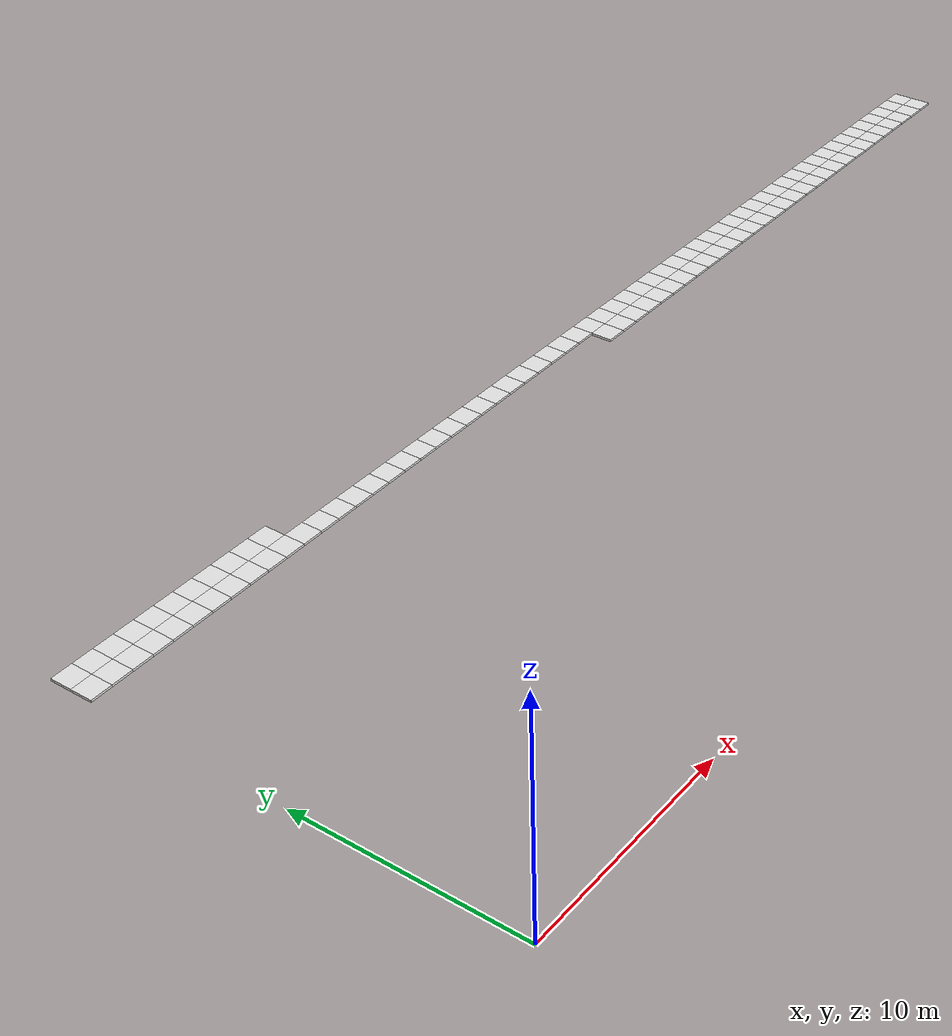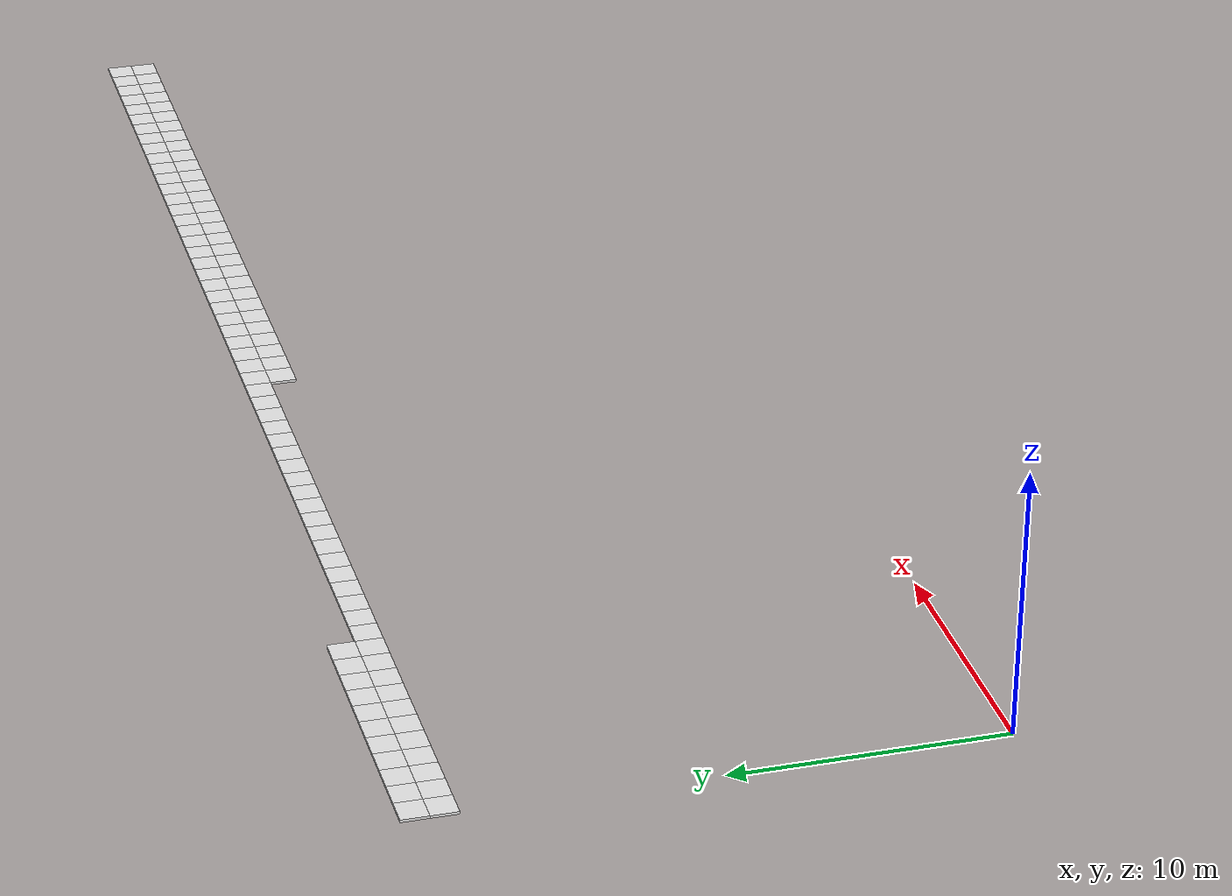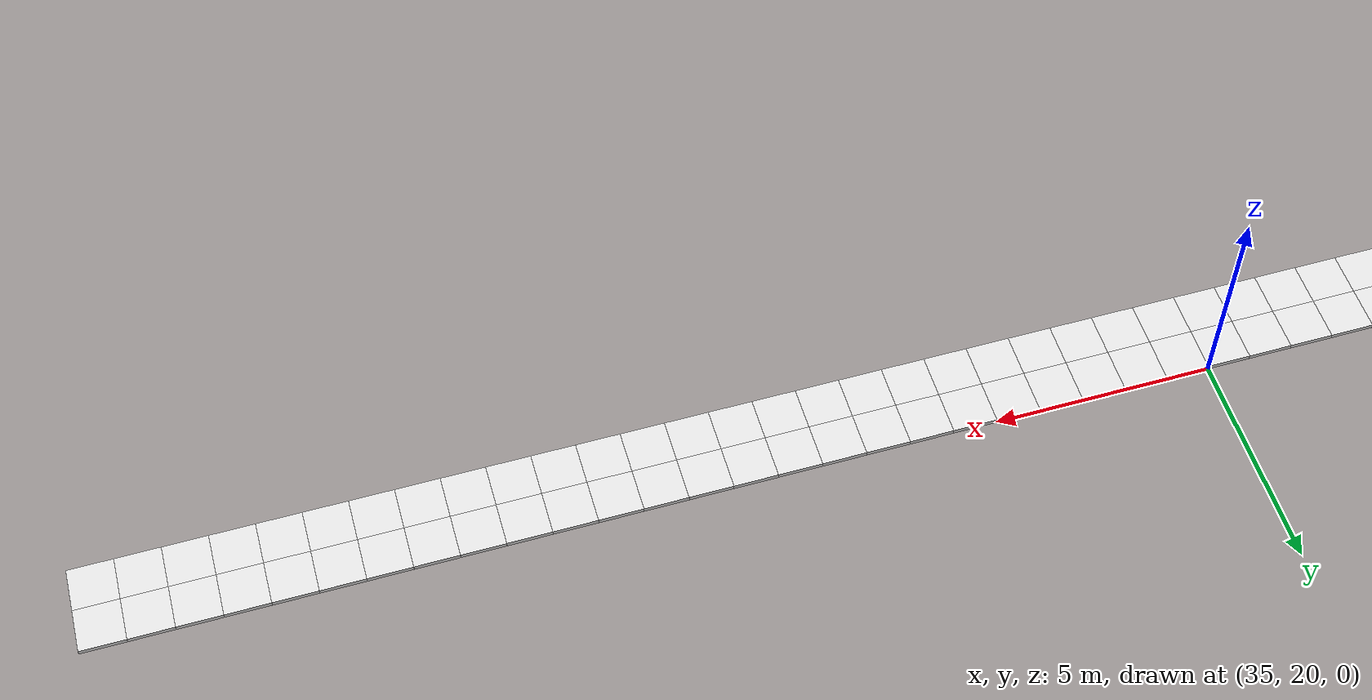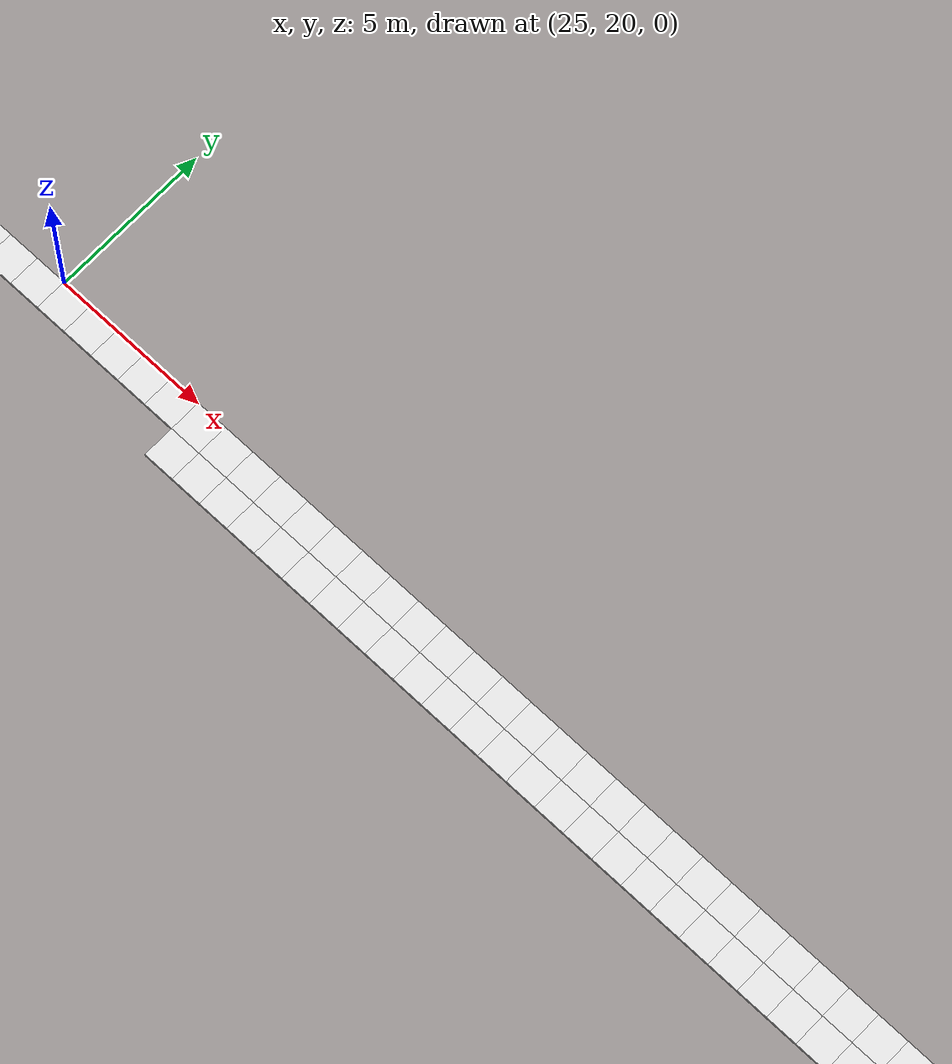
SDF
<sdf version="1.6">
 <world name="grid_world">
  <model name="cell_30_18">
   <static>true</static>
   <link name="link">
    <collision name="collision"><geometry><box><size>1 1 0.1</size></box></geometry></collision>
    <visual name="visual">
     <geometry><box><size>1 1 0.1</size></box></geometry>
     <material>
      <script><uri>file://media/materials/scripts/gazebo.material</uri><name>Gazebo/White</name></script>
     </material>
    </visual>
    <pose>30.5 18.5 0.05 0 0 0</pose>
   </link>
  </model>
  <model name="cell_31_18">
   <static>true</static>
   <link name="link">
    <collision name="collision"><geometry><box><size>1 1 0.1</size></box></geometry></collision>
    <visual name="visual">
     <geometry><box><size>1 1 0.1</size></box></geometry>
     <material>
      <script><uri>file://media/materials/scripts/gazebo.material</uri><name>Gazebo/White</name></script>
     </material>
    </visual>
    <pose>31.5 18.5 0.05 0 0 0</pose>
   </link>
  </model>
  <model name="cell_32_18">
   <static>true</static>
   <link name="link">
    <collision name="collision"><geometry><box><size>1 1 0.1</size></box></geometry></collision>
    <visual name="visual">
     <geometry><box><size>1 1 0.1</size></box></geometry>
     <material>
      <script><uri>file://media/materials/scripts/gazebo.material</uri><name>Gazebo/White</name></script>
     </material>
    </visual>
    <pose>32.5 18.5 0.05 0 0 0</pose>
   </link>
  </model>
  <model name="cell_33_18">
   <static>true</static>
   <link name="link">
    <collision name="collision"><geometry><box><size>1 1 0.1</size></box></geometry></collision>
    <visual name="visual">
     <geometry><box><size>1 1 0.1</size></box></geometry>
     <material>
      <script><uri>file://media/materials/scripts/gazebo.material</uri><name>Gazebo/White</name></script>
     </material>
    </visual>
    <pose>33.5 18.5 0.05 0 0 0</pose>
   </link>
  </model>
  <model name="cell_34_18">
   <static>true</static>
   <link name="link">
    <collision name="collision"><geometry><box><size>1 1 0.1</size></box></geometry></collision>
    <visual name="visual">
     <geometry><box><size>1 1 0.1</size></box></geometry>
     <material>
      <script><uri>file://media/materials/scripts/gazebo.material</uri><name>Gazebo/White</name></script>
     </material>
    </visual>
    <pose>34.5 18.5 0.05 0 0 0</pose>
   </link>
  </model>
  <model name="cell_35_18">
   <static>true</static>
   <link name="link">
    <collision name="collision"><geometry><box><size>1 1 0.1</size></box></geometry></collision>
    <visual name="visual">
     <geometry><box><size>1 1 0.1</size></box></geometry>
     <material>
      <script><uri>file://media/materials/scripts/gazebo.material</uri><name>Gazebo/White</name></script>
     </material>
    </visual>
    <pose>35.5 18.5 0.05 0 0 0</pose>
   </link>
  </model>
  <model name="cell_36_18">
   <static>true</static>
   <link name="link">
    <collision name="collision"><geometry><box><size>1 1 0.1</size></box></geometry></collision>
    <visual name="visual">
     <geometry><box><size>1 1 0.1</size></box></geometry>
     <material>
      <script><uri>file://media/materials/scripts/gazebo.material</uri><name>Gazebo/White</name></script>
     </material>
    </visual>
    <pose>36.5 18.5 0.05 0 0 0</pose>
   </link>
  </model>
  <model name="cell_37_18">
   <static>true</static>
   <link name="link">
    <collision name="collision"><geometry><box><size>1 1 0.1</size></box></geometry></collision>
    <visual name="visual">
     <geometry><box><size>1 1 0.1</size></box></geometry>
     <material>
      <script><uri>file://media/materials/scripts/gazebo.material</uri><name>Gazebo/White</name></script>
     </material>
    </visual>
    <pose>37.5 18.5 0.05 0 0 0</pose>
   </link>
  </model>
  <model name="cell_38_18">
   <static>true</static>
   <link name="link">
    <collision name="collision"><geometry><box><size>1 1 0.1</size></box></geometry></collision>
    <visual name="visual">
     <geometry><box><size>1 1 0.1</size></box></geometry>
     <material>
      <script><uri>file://media/materials/scripts/gazebo.material</uri><name>Gazebo/White</name></script>
     </material>
    </visual>
    <pose>38.5 18.5 0.05 0 0 0</pose>
   </link>
  </model>
  <model name="cell_39_18">
   <static>true</static>
   <link name="link">
    <collision name="collision"><geometry><box><size>1 1 0.1</size></box></geometry></collision>
    <visual name="visual">
     <geometry><box><size>1 1 0.1</size></box></geometry>
     <material>
      <script><uri>file://media/materials/scripts/gazebo.material</uri><name>Gazebo/White</name></script>
     </material>
    </visual>
    <pose>39.5 18.5 0.05 0 0 0</pose>
   </link>
  </model>
  <model name="cell_40_18">
   <static>true</static>
   <link name="link">
    <collision name="collision"><geometry><box><size>1 1 0.1</size></box></geometry></collision>
    <visual name="visual">
     <geometry><box><size>1 1 0.1</size></box></geometry>
     <material>
      <script><uri>file://media/materials/scripts/gazebo.material</uri><name>Gazebo/White</name></script>
     </material>
    </visual>
    <pose>40.5 18.5 0.05 0 0 0</pose>
   </link>
  </model>
  <model name="cell_41_18">
   <static>true</static>
   <link name="link">
    <collision name="collision"><geometry><box><size>1 1 0.1</size></box></geometry></collision>
    <visual name="visual">
     <geometry><box><size>1 1 0.1</size></box></geometry>
     <material>
      <script><uri>file://media/materials/scripts/gazebo.material</uri><name>Gazebo/White</name></script>
     </material>
    </visual>
    <pose>41.5 18.5 0.05 0 0 0</pose>
   </link>
  </model>
  <model name="cell_42_18">
   <static>true</static>
   <link name="link">
    <collision name="collision"><geometry><box><size>1 1 0.1</size></box></geometry></collision>
    <visual name="visual">
     <geometry><box><size>1 1 0.1</size></box></geometry>
     <material>
      <script><uri>file://media/materials/scripts/gazebo.material</uri><name>Gazebo/White</name></script>
     </material>
    </visual>
    <pose>42.5 18.5 0.05 0 0 0</pose>
   </link>
  </model>
  <model name="cell_43_18">
   <static>true</static>
   <link name="link">
    <collision name="collision"><geometry><box><size>1 1 0.1</size></box></geometry></collision>
    <visual name="visual">
     <geometry><box><size>1 1 0.1</size></box></geometry>
     <material>
      <script><uri>file://media/materials/scripts/gazebo.material</uri><name>Gazebo/White</name></script>
     </material>
    </visual>
    <pose>43.5 18.5 0.05 0 0 0</pose>
   </link>
  </model>
  <model name="cell_44_18">
   <static>true</static>
   <link name="link">
    <collision name="collision"><geometry><box><size>1 1 0.1</size></box></geometry></collision>
    <visual name="visual">
     <geometry><box><size>1 1 0.1</size></box></geometry>
     <material>
      <script><uri>file://media/materials/scripts/gazebo.material</uri><name>Gazebo/White</name></script>
     </material>
    </visual>
    <pose>44.5 18.5 0.05 0 0 0</pose>
   </link>
  </model>
  <model name="cell_45_18">
   <static>true</static>
   <link name="link">
    <collision name="collision"><geometry><box><size>1 1 0.1</size></box></geometry></collision>
    <visual name="visual">
     <geometry><box><size>1 1 0.1</size></box></geometry>
     <material>
      <script><uri>file://media/materials/scripts/gazebo.material</uri><name>Gazebo/White</name></script>
     </material>
    </visual>
    <pose>45.5 18.5 0.05 0 0 0</pose>
   </link>
  </model>
  <model name="cell_46_18">
   <static>true</static>
   <link name="link">
    <collision name="collision"><geometry><box><size>1 1 0.1</size></box></geometry></collision>
    <visual name="visual">
     <geometry><box><size>1 1 0.1</size></box></geometry>
     <material>
      <script><uri>file://media/materials/scripts/gazebo.material</uri><name>Gazebo/White</name></script>
     </material>
    </visual>
    <pose>46.5 18.5 0.05 0 0 0</pose>
   </link>
  </model>
  <model name="cell_47_18">
   <static>true</static>
   <link name="link">
    <collision name="collision"><geometry><box><size>1 1 0.1</size></box></geometry></collision>
    <visual name="visual">
     <geometry><box><size>1 1 0.1</size></box></geometry>
     <material>
      <script><uri>file://media/materials/scripts/gazebo.material</uri><name>Gazebo/White</name></script>
     </material>
    </visual>
    <pose>47.5 18.5 0.05 0 0 0</pose>
   </link>
  </model>
  <model name="cell_48_18">
   <static>true</static>
   <link name="link">
    <collision name="collision"><geometry><box><size>1 1 0.1</size></box></geometry></collision>
    <visual name="visual">
     <geometry><box><size>1 1 0.1</size></box></geometry>
     <material>
      <script><uri>file://media/materials/scripts/gazebo.material</uri><name>Gazebo/White</name></script>
     </material>
    </visual>
    <pose>48.5 18.5 0.05 0 0 0</pose>
   </link>
  </model>
  <model name="cell_49_18">
   <static>true</static>
   <link name="link">
    <collision name="collision"><geometry><box><size>1 1 0.1</size></box></geometry></collision>
    <visual name="visual">
     <geometry><box><size>1 1 0.1</size></box></geometry>
     <material>
      <script><uri>file://media/materials/scripts/gazebo.material</uri><name>Gazebo/White</name></script>
     </material>
    </visual>
    <pose>49.5 18.5 0.05 0 0 0</pose>
   </link>
  </model>
  <model name="cell_50_18">
   <static>true</static>
   <link name="link">
    <collision name="collision"><geometry><box><size>1 1 0.1</size></box></geometry></collision>
    <visual name="visual">
     <geometry><box><size>1 1 0.1</size></box></geometry>
     <material>
      <script><uri>file://media/materials/scripts/gazebo.material</uri><name>Gazebo/White</name></script>
     </material>
    </visual>
    <pose>50.5 18.5 0.05 0 0 0</pose>
   </link>
  </model>
  <model name="cell_51_18">
   <static>true</static>
   <link name="link">
    <collision name="collision"><geometry><box><size>1 1 0.1</size></box></geometry></collision>
    <visual name="visual">
     <geometry><box><size>1 1 0.1</size></box></geometry>
     <material>
      <script><uri>file://media/materials/scripts/gazebo.material</uri><name>Gazebo/White</name></script>
     </material>
    </visual>
    <pose>51.5 18.5 0.05 0 0 0</pose>
   </link>
  </model>
  <model name="cell_52_18">
   <static>true</static>
   <link name="link">
    <collision name="collision"><geometry><box><size>1 1 0.1</size></box></geometry></collision>
    <visual name="visual">
     <geometry><box><size>1 1 0.1</size></box></geometry>
     <material>
      <script><uri>file://media/materials/scripts/gazebo.material</uri><name>Gazebo/White</name></script>
     </material>
    </visual>
    <pose>52.5 18.5 0.05 0 0 0</pose>
   </link>
  </model>
  <model name="cell_53_18">
   <static>true</static>
   <link name="link">
    <collision name="collision"><geometry><box><size>1 1 0.1</size></box></geometry></collision>
    <visual name="visual">
     <geometry><box><size>1 1 0.1</size></box></geometry>
     <material>
      <script><uri>file://media/materials/scripts/gazebo.material</uri><name>Gazebo/White</name></script>
     </material>
    </visual>
    <pose>53.5 18.5 0.05 0 0 0</pose>
   </link>
  </model>
  <model name="cell_54_18">
   <static>true</static>
   <link name="link">
    <collision name="collision"><geometry><box><size>1 1 0.1</size></box></geometry></collision>
    <visual name="visual">
     <geometry><box><size>1 1 0.1</size></box></geometry>
     <material>
      <script><uri>file://media/materials/scripts/gazebo.material</uri><name>Gazebo/White</name></script>
     </material>
    </visual>
    <pose>54.5 18.5 0.05 0 0 0</pose>
   </link>
  </model>
  <model name="cell_55_18">
   <static>true</static>
   <link name="link">
    <collision name="collision"><geometry><box><size>1 1 0.1</size></box></geometry></collision>
    <visual name="visual">
     <geometry><box><size>1 1 0.1</size></box></geometry>
     <material>
      <script><uri>file://media/materials/scripts/gazebo.material</uri><name>Gazebo/White</name></script>
     </material>
    </visual>
    <pose>55.5 18.5 0.05 0 0 0</pose>
   </link>
  </model>
  <model name="cell_56_18">
   <static>true</static>
   <link name="link">
    <collision name="collision"><geometry><box><size>1 1 0.1</size></box></geometry></collision>
    <visual name="visual">
     <geometry><box><size>1 1 0.1</size></box></geometry>
     <material>
      <script><uri>file://media/materials/scripts/gazebo.material</uri><name>Gazebo/White</name></script>
     </material>
    </visual>
    <pose>56.5 18.5 0.05 0 0 0</pose>
   </link>
  </model>
  <model name="cell_57_18">
   <static>true</static>
   <link name="link">
    <collision name="collision"><geometry><box><size>1 1 0.1</size></box></geometry></collision>
    <visual name="visual">
     <geometry><box><size>1 1 0.1</size></box></geometry>
     <material>
      <script><uri>file://media/materials/scripts/gazebo.material</uri><name>Gazebo/White</name></script>
     </material>
    </visual>
    <pose>57.5 18.5 0.05 0 0 0</pose>
   </link>
  </model>
  <model name="cell_58_18">
   <static>true</static>
   <link name="link">
    <collision name="collision"><geometry><box><size>1 1 0.1</size></box></geometry></collision>
    <visual name="visual">
     <geometry><box><size>1 1 0.1</size></box></geometry>
     <material>
      <script><uri>file://media/materials/scripts/gazebo.material</uri><name>Gazebo/White</name></script>
     </material>
    </visual>
    <pose>58.5 18.5 0.05 0 0 0</pose>
   </link>
  </model>
  <model name="cell_59_18">
   <static>true</static>
   <link name="link">
    <collision name="collision"><geometry><box><size>1 1 0.1</size></box></geometry></collision>
    <visual name="visual">
     <geometry><box><size>1 1 0.1</size></box></geometry>
     <material>
      <script><uri>file://media/materials/scripts/gazebo.material</uri><name>Gazebo/White</name></script>
     </material>
    </visual>
    <pose>59.5 18.5 0.05 0 0 0</pose>
   </link>
  </model>
  <model name="cell_0_19">
   <static>true</static>
   <link name="link">
    <collision name="collision"><geometry><box><size>1 1 0.1</size></box></geometry></collision>
    <visual name="visual">
     <geometry><box><size>1 1 0.1</size></box></geometry>
     <material>
      <script><uri>file://media/materials/scripts/gazebo.material</uri><name>Gazebo/White</name></script>
     </material>
    </visual>
    <pose>0.5 19.5 0.05 0 0 0</pose>
   </link>
  </model>
  <model name="cell_1_19">
   <static>true</static>
   <link name="link">
    <collision name="collision"><geometry><box><size>1 1 0.1</size></box></geometry></collision>
    <visual name="visual">
     <geometry><box><size>1 1 0.1</size></box></geometry>
     <material>
      <script><uri>file://media/materials/scripts/gazebo.material</uri><name>Gazebo/White</name></script>
     </material>
    </visual>
    <pose>1.5 19.5 0.05 0 0 0</pose>
   </link>
  </model>
  <model name="cell_2_19">
   <static>true</static>
   <link name="link">
    <collision name="collision"><geometry><box><size>1 1 0.1</size></box></geometry></collision>
    <visual name="visual">
     <geometry><box><size>1 1 0.1</size></box></geometry>
     <material>
      <script><uri>file://media/materials/scripts/gazebo.material</uri><name>Gazebo/White</name></script>
     </material>
    </visual>
    <pose>2.5 19.5 0.05 0 0 0</pose>
   </link>
  </model>
  <model name="cell_3_19">
   <static>true</static>
   <link name="link">
    <collision name="collision"><geometry><box><size>1 1 0.1</size></box></geometry></collision>
    <visual name="visual">
     <geometry><box><size>1 1 0.1</size></box></geometry>
     <material>
      <script><uri>file://media/materials/scripts/gazebo.material</uri><name>Gazebo/White</name></script>
     </material>
    </visual>
    <pose>3.5 19.5 0.05 0 0 0</pose>
   </link>
  </model>
  <model name="cell_4_19">
   <static>true</static>
   <link name="link">
    <collision name="collision"><geometry><box><size>1 1 0.1</size></box></geometry></collision>
    <visual name="visual">
     <geometry><box><size>1 1 0.1</size></box></geometry>
     <material>
      <script><uri>file://media/materials/scripts/gazebo.material</uri><name>Gazebo/White</name></script>
     </material>
    </visual>
    <pose>4.5 19.5 0.05 0 0 0</pose>
   </link>
  </model>
  <model name="cell_5_19">
   <static>true</static>
   <link name="link">
    <collision name="collision"><geometry><box><size>1 1 0.1</size></box></geometry></collision>
    <visual name="visual">
     <geometry><box><size>1 1 0.1</size></box></geometry>
     <material>
      <script><uri>file://media/materials/scripts/gazebo.material</uri><name>Gazebo/White</name></script>
     </material>
    </visual>
    <pose>5.5 19.5 0.05 0 0 0</pose>
   </link>
  </model>
  <model name="cell_6_19">
   <static>true</static>
   <link name="link">
    <collision name="collision"><geometry><box><size>1 1 0.1</size></box></geometry></collision>
    <visual name="visual">
     <geometry><box><size>1 1 0.1</size></box></geometry>
     <material>
      <script><uri>file://media/materials/scripts/gazebo.material</uri><name>Gazebo/White</name></script>
     </material>
    </visual>
    <pose>6.5 19.5 0.05 0 0 0</pose>
   </link>
  </model>
  <model name="cell_7_19">
   <static>true</static>
   <link name="link">
    <collision name="collision"><geometry><box><size>1 1 0.1</size></box></geometry></collision>
    <visual name="visual">
     <geometry><box><size>1 1 0.1</size></box></geometry>
     <material>
      <script><uri>file://media/materials/scripts/gazebo.material</uri><name>Gazebo/White</name></script>
     </material>
    </visual>
    <pose>7.5 19.5 0.05 0 0 0</pose>
   </link>
  </model>
  <model name="cell_8_19">
   <static>true</static>
   <link name="link">
    <collision name="collision"><geometry><box><size>1 1 0.1</size></box></geometry></collision>
    <visual name="visual">
     <geometry><box><size>1 1 0.1</size></box></geometry>
     <material>
      <script><uri>file://media/materials/scripts/gazebo.material</uri><name>Gazebo/White</name></script>
     </material>
    </visual>
    <pose>8.5 19.5 0.05 0 0 0</pose>
   </link>
  </model>
  <model name="cell_9_19">
   <static>true</static>
   <link name="link">
    <collision name="collision"><geometry><box><size>1 1 0.1</size></box></geometry></collision>
    <visual name="visual">
     <geometry><box><size>1 1 0.1</size></box></geometry>
     <material>
      <script><uri>file://media/materials/scripts/gazebo.material</uri><name>Gazebo/White</name></script>
     </material>
    </visual>
    <pose>9.5 19.5 0.05 0 0 0</pose>
   </link>
  </model>
  <model name="cell_10_19">
   <static>true</static>
   <link name="link">
    <collision name="collision"><geometry><box><size>1 1 0.1</size></box></geometry></collision>
    <visual name="visual">
     <geometry><box><size>1 1 0.1</size></box></geometry>
     <material>
      <script><uri>file://media/materials/scripts/gazebo.material</uri><name>Gazebo/White</name></script>
     </material>
    </visual>
    <pose>10.5 19.5 0.05 0 0 0</pose>
   </link>
  </model>
  <model name="cell_11_19">
   <static>true</static>
   <link name="link">
    <collision name="collision"><geometry><box><size>1 1 0.1</size></box></geometry></collision>
    <visual name="visual">
     <geometry><box><size>1 1 0.1</size></box></geometry>
     <material>
      <script><uri>file://media/materials/scripts/gazebo.material</uri><name>Gazebo/White</name></script>
     </material>
    </visual>
    <pose>11.5 19.5 0.05 0 0 0</pose>
   </link>
  </model>
  <model name="cell_12_19">
   <static>true</static>
   <link name="link">
    <collision name="collision"><geometry><box><size>1 1 0.1</size></box></geometry></collision>
    <visual name="visual">
     <geometry><box><size>1 1 0.1</size></box></geometry>
     <material>
      <script><uri>file://media/materials/scripts/gazebo.material</uri><name>Gazebo/White</name></script>
     </material>
    </visual>
    <pose>12.5 19.5 0.05 0 0 0</pose>
   </link>
  </model>
  <model name="cell_13_19">
   <static>true</static>
   <link name="link">
    <collision name="collision"><geometry><box><size>1 1 0.1</size></box></geometry></collision>
    <visual name="visual">
     <geometry><box><size>1 1 0.1</size></box></geometry>
     <material>
      <script><uri>file://media/materials/scripts/gazebo.material</uri><name>Gazebo/White</name></script>
     </material>
    </visual>
    <pose>13.5 19.5 0.05 0 0 0</pose>
   </link>
  </model>
  <model name="cell_14_19">
   <static>true</static>
   <link name="link">
    <collision name="collision"><geometry><box><size>1 1 0.1</size></box></geometry></collision>
    <visual name="visual">
     <geometry><box><size>1 1 0.1</size></box></geometry>
     <material>
      <script><uri>file://media/materials/scripts/gazebo.material</uri><name>Gazebo/White</name></script>
     </material>
    </visual>
    <pose>14.5 19.5 0.05 0 0 0</pose>
   </link>
  </model>
  <model name="cell_15_19">
   <static>true</static>
   <link name="link">
    <collision name="collision"><geometry><box><size>1 1 0.1</size></box></geometry></collision>
    <visual name="visual">
     <geometry><box><size>1 1 0.1</size></box></geometry>
     <material>
      <script><uri>file://media/materials/scripts/gazebo.material</uri><name>Gazebo/White</name></script>
     </material>
    </visual>
    <pose>15.5 19.5 0.05 0 0 0</pose>
   </link>
  </model>
  <model name="cell_16_19">
   <static>true</static>
   <link name="link">
    <collision name="collision"><geometry><box><size>1 1 0.1</size></box></geometry></collision>
    <visual name="visual">
     <geometry><box><size>1 1 0.1</size></box></geometry>
     <material>
      <script><uri>file://media/materials/scripts/gazebo.material</uri><name>Gazebo/White</name></script>
     </material>
    </visual>
    <pose>16.5 19.5 0.05 0 0 0</pose>
   </link>
  </model>
  <model name="cell_17_19">
   <static>true</static>
   <link name="link">
    <collision name="collision"><geometry><box><size>1 1 0.1</size></box></geometry></collision>
    <visual name="visual">
     <geometry><box><size>1 1 0.1</size></box></geometry>
     <material>
      <script><uri>file://media/materials/scripts/gazebo.material</uri><name>Gazebo/White</name></script>
     </material>
    </visual>
    <pose>17.5 19.5 0.05 0 0 0</pose>
   </link>
  </model>
  <model name="cell_18_19">
   <static>true</static>
   <link name="link">
    <collision name="collision"><geometry><box><size>1 1 0.1</size></box></geometry></collision>
    <visual name="visual">
     <geometry><box><size>1 1 0.1</size></box></geometry>
     <material>
      <script><uri>file://media/materials/scripts/gazebo.material</uri><name>Gazebo/White</name></script>
     </material>
    </visual>
    <pose>18.5 19.5 0.05 0 0 0</pose>
   </link>
  </model>
  <model name="cell_19_19">
   <static>true</static>
   <link name="link">
    <collision name="collision"><geometry><box><size>1 1 0.1</size></box></geometry></collision>
    <visual name="visual">
     <geometry><box><size>1 1 0.1</size></box></geometry>
     <material>
      <script><uri>file://media/materials/scripts/gazebo.material</uri><name>Gazebo/White</name></script>
     </material>
    </visual>
    <pose>19.5 19.5 0.05 0 0 0</pose>
   </link>
  </model>
  <model name="cell_20_19">
   <static>true</static>
   <link name="link">
    <collision name="collision"><geometry><box><size>1 1 0.1</size></box></geometry></collision>
    <visual name="visual">
     <geometry><box><size>1 1 0.1</size></box></geometry>
     <material>
      <script><uri>file://media/materials/scripts/gazebo.material</uri><name>Gazebo/White</name></script>
     </material>
    </visual>
    <pose>20.5 19.5 0.05 0 0 0</pose>
   </link>
  </model>
  <model name="cell_21_19">
   <static>true</static>
   <link name="link">
    <collision name="collision"><geometry><box><size>1 1 0.1</size></box></geometry></collision>
    <visual name="visual">
     <geometry><box><size>1 1 0.1</size></box></geometry>
     <material>
      <script><uri>file://media/materials/scripts/gazebo.material</uri><name>Gazebo/White</name></script>
     </material>
    </visual>
    <pose>21.5 19.5 0.05 0 0 0</pose>
   </link>
  </model>
  <model name="cell_22_19">
   <static>true</static>
   <link name="link">
    <collision name="collision"><geometry><box><size>1 1 0.1</size></box></geometry></collision>
    <visual name="visual">
     <geometry><box><size>1 1 0.1</size></box></geometry>
     <material>
      <script><uri>file://media/materials/scripts/gazebo.material</uri><name>Gazebo/White</name></script>
     </material>
    </visual>
    <pose>22.5 19.5 0.05 0 0 0</pose>
   </link>
  </model>
  <model name="cell_23_19">
   <static>true</static>
   <link name="link">
    <collision name="collision"><geometry><box><size>1 1 0.1</size></box></geometry></collision>
    <visual name="visual">
     <geometry><box><size>1 1 0.1</size></box></geometry>
     <material>
      <script><uri>file://media/materials/scripts/gazebo.material</uri><name>Gazebo/White</name></script>
     </material>
    </visual>
    <pose>23.5 19.5 0.05 0 0 0</pose>
   </link>
  </model>
  <model name="cell_24_19">
   <static>true</static>
   <link name="link">
    <collision name="collision"><geometry><box><size>1 1 0.1</size></box></geometry></collision>
    <visual name="visual">
     <geometry><box><size>1 1 0.1</size></box></geometry>
     <material>
      <script><uri>file://media/materials/scripts/gazebo.material</uri><name>Gazebo/White</name></script>
     </material>
    </visual>
    <pose>24.5 19.5 0.05 0 0 0</pose>
   </link>
  </model>
  <model name="cell_25_19">
   <static>true</static>
   <link name="link">
    <collision name="collision"><geometry><box><size>1 1 0.1</size></box></geometry></collision>
    <visual name="visual">
     <geometry><box><size>1 1 0.1</size></box></geometry>
     <material>
      <script><uri>file://media/materials/scripts/gazebo.material</uri><name>Gazebo/White</name></script>
     </material>
    </visual>
    <pose>25.5 19.5 0.05 0 0 0</pose>
   </link>
  </model>
  <model name="cell_26_19">
   <static>true</static>
   <link name="link">
    <collision name="collision"><geometry><box><size>1 1 0.1</size></box></geometry></collision>
    <visual name="visual">
     <geometry><box><size>1 1 0.1</size></box></geometry>
     <material>
      <script><uri>file://media/materials/scripts/gazebo.material</uri><name>Gazebo/White</name></script>
     </material>
    </visual>
    <pose>26.5 19.5 0.05 0 0 0</pose>
   </link>
  </model>
  <model name="cell_27_19">
   <static>true</static>
   <link name="link">
    <collision name="collision"><geometry><box><size>1 1 0.1</size></box></geometry></collision>
    <visual name="visual">
     <geometry><box><size>1 1 0.1</size></box></geometry>
     <material>
      <script><uri>file://media/materials/scripts/gazebo.material</uri><name>Gazebo/White</name></script>
     </material>
    </visual>
    <pose>27.5 19.5 0.05 0 0 0</pose>
   </link>
  </model>
  <model name="cell_28_19">
   <static>true</static>
   <link name="link">
    <collision name="collision"><geometry><box><size>1 1 0.1</size></box></geometry></collision>
    <visual name="visual">
     <geometry><box><size>1 1 0.1</size></box></geometry>
     <material>
      <script><uri>file://media/materials/scripts/gazebo.material</uri><name>Gazebo/White</name></script>
     </material>
    </visual>
    <pose>28.5 19.5 0.05 0 0 0</pose>
   </link>
  </model>
  <model name="cell_29_19">
   <static>true</static>
   <link name="link">
    <collision name="collision"><geometry><box><size>1 1 0.1</size></box></geometry></collision>
    <visual name="visual">
     <geometry><box><size>1 1 0.1</size></box></geometry>
     <material>
      <script><uri>file://media/materials/scripts/gazebo.material</uri><name>Gazebo/White</name></script>
     </material>
    </visual>
    <pose>29.5 19.5 0.05 0 0 0</pose>
   </link>
  </model>
  <model name="cell_30_19">
   <static>true</static>
   <link name="link">
    <collision name="collision"><geometry><box><size>1 1 0.1</size></box></geometry></collision>
    <visual name="visual">
     <geometry><box><size>1 1 0.1</size></box></geometry>
     <material>
      <script><uri>file://media/materials/scripts/gazebo.material</uri><name>Gazebo/White</name></script>
     </material>
    </visual>
    <pose>30.5 19.5 0.05 0 0 0</pose>
   </link>
  </model>
  <model name="cell_31_19">
   <static>true</static>
   <link name="link">
    <collision name="collision"><geometry><box><size>1 1 0.1</size></box></geometry></collision>
    <visual name="visual">
     <geometry><box><size>1 1 0.1</size></box></geometry>
     <material>
      <script><uri>file://media/materials/scripts/gazebo.material</uri><name>Gazebo/White</name></script>
     </material>
    </visual>
    <pose>31.5 19.5 0.05 0 0 0</pose>
   </link>
  </model>
  <model name="cell_32_19">
   <static>true</static>
   <link name="link">
    <collision name="collision"><geometry><box><size>1 1 0.1</size></box></geometry></collision>
    <visual name="visual">
     <geometry><box><size>1 1 0.1</size></box></geometry>
     <material>
      <script><uri>file://media/materials/scripts/gazebo.material</uri><name>Gazebo/White</name></script>
     </material>
    </visual>
    <pose>32.5 19.5 0.05 0 0 0</pose>
   </link>
  </model>
  <model name="cell_33_19">
   <static>true</static>
   <link name="link">
    <collision name="collision"><geometry><box><size>1 1 0.1</size></box></geometry></collision>
    <visual name="visual">
     <geometry><box><size>1 1 0.1</size></box></geometry>
     <material>
      <script><uri>file://media/materials/scripts/gazebo.material</uri><name>Gazebo/White</name></script>
     </material>
    </visual>
    <pose>33.5 19.5 0.05 0 0 0</pose>
   </link>
  </model>
  <model name="cell_34_19">
   <static>true</static>
   <link name="link">
    <collision name="collision"><geometry><box><size>1 1 0.1</size></box></geometry></collision>
    <visual name="visual">
     <geometry><box><size>1 1 0.1</size></box></geometry>
     <material>
      <script><uri>file://media/materials/scripts/gazebo.material</uri><name>Gazebo/White</name></script>
     </material>
    </visual>
    <pose>34.5 19.5 0.05 0 0 0</pose>
   </link>
  </model>
  <model name="cell_35_19">
   <static>true</static>
   <link name="link">
    <collision name="collision"><geometry><box><size>1 1 0.1</size></box></geometry></collision>
    <visual name="visual">
     <geometry><box><size>1 1 0.1</size></box></geometry>
     <material>
      <script><uri>file://media/materials/scripts/gazebo.material</uri><name>Gazebo/White</name></script>
     </material>
    </visual>
    <pose>35.5 19.5 0.05 0 0 0</pose>
   </link>
  </model>
  <model name="cell_36_19">
   <static>true</static>
   <link name="link">
    <collision name="collision"><geometry><box><size>1 1 0.1</size></box></geometry></collision>
    <visual name="visual">
     <geometry><box><size>1 1 0.1</size></box></geometry>
     <material>
      <script><uri>file://media/materials/scripts/gazebo.material</uri><name>Gazebo/White</name></script>
     </material>
    </visual>
    <pose>36.5 19.5 0.05 0 0 0</pose>
   </link>
  </model>
  <model name="cell_37_19">
   <static>true</static>
   <link name="link">
    <collision name="collision"><geometry><box><size>1 1 0.1</size></box></geometry></collision>
    <visual name="visual">
     <geometry><box><size>1 1 0.1</size></box></geometry>
     <material>
      <script><uri>file://media/materials/scripts/gazebo.material</uri><name>Gazebo/White</name></script>
     </material>
    </visual>
    <pose>37.5 19.5 0.05 0 0 0</pose>
   </link>
  </model>
  <model name="cell_38_19">
   <static>true</static>
   <link name="link">
    <collision name="collision"><geometry><box><size>1 1 0.1</size></box></geometry></collision>
    <visual name="visual">
     <geometry><box><size>1 1 0.1</size></box></geometry>
     <material>
      <script><uri>file://media/materials/scripts/gazebo.material</uri><name>Gazebo/White</name></script>
     </material>
    </visual>
    <pose>38.5 19.5 0.05 0 0 0</pose>
   </link>
  </model>
  <model name="cell_39_19">
   <static>true</static>
   <link name="link">
    <collision name="collision"><geometry><box><size>1 1 0.1</size></box></geometry></collision>
    <visual name="visual">
     <geometry><box><size>1 1 0.1</size></box></geometry>
     <material>
      <script><uri>file://media/materials/scripts/gazebo.material</uri><name>Gazebo/White</name></script>
     </material>
    </visual>
    <pose>39.5 19.5 0.05 0 0 0</pose>
   </link>
  </model>
  <model name="cell_40_19">
   <static>true</static>
   <link name="link">
    <collision name="collision"><geometry><box><size>1 1 0.1</size></box></geometry></collision>
    <visual name="visual">
     <geometry><box><size>1 1 0.1</size></box></geometry>
     <material>
      <script><uri>file://media/materials/scripts/gazebo.material</uri><name>Gazebo/White</name></script>
     </material>
    </visual>
    <pose>40.5 19.5 0.05 0 0 0</pose>
   </link>
  </model>
  <model name="cell_41_19">
   <static>true</static>
   <link name="link">
    <collision name="collision"><geometry><box><size>1 1 0.1</size></box></geometry></collision>
    <visual name="visual">
     <geometry><box><size>1 1 0.1</size></box></geometry>
     <material>
      <script><uri>file://media/materials/scripts/gazebo.material</uri><name>Gazebo/White</name></script>
     </material>
    </visual>
    <pose>41.5 19.5 0.05 0 0 0</pose>
   </link>
  </model>
  <model name="cell_42_19">
   <static>true</static>
   <link name="link">
    <collision name="collision"><geometry><box><size>1 1 0.1</size></box></geometry></collision>
    <visual name="visual">
     <geometry><box><size>1 1 0.1</size></box></geometry>
     <material>
      <script><uri>file://media/materials/scripts/gazebo.material</uri><name>Gazebo/White</name></script>
     </material>
    </visual>
    <pose>42.5 19.5 0.05 0 0 0</pose>
   </link>
  </model>
  <model name="cell_43_19">
   <static>true</static>
   <link name="link">
    <collision name="collision"><geometry><box><size>1 1 0.1</size></box></geometry></collision>
    <visual name="visual">
     <geometry><box><size>1 1 0.1</size></box></geometry>
     <material>
      <script><uri>file://media/materials/scripts/gazebo.material</uri><name>Gazebo/White</name></script>
     </material>
    </visual>
    <pose>43.5 19.5 0.05 0 0 0</pose>
   </link>
  </model>
  <model name="cell_44_19">
   <static>true</static>
   <link name="link">
    <collision name="collision"><geometry><box><size>1 1 0.1</size></box></geometry></collision>
    <visual name="visual">
     <geometry><box><size>1 1 0.1</size></box></geometry>
     <material>
      <script><uri>file://media/materials/scripts/gazebo.material</uri><name>Gazebo/White</name></script>
     </material>
    </visual>
    <pose>44.5 19.5 0.05 0 0 0</pose>
   </link>
  </model>
  <model name="cell_45_19">
   <static>true</static>
   <link name="link">
    <collision name="collision"><geometry><box><size>1 1 0.1</size></box></geometry></collision>
    <visual name="visual">
     <geometry><box><size>1 1 0.1</size></box></geometry>
     <material>
      <script><uri>file://media/materials/scripts/gazebo.material</uri><name>Gazebo/White</name></script>
     </material>
    </visual>
    <pose>45.5 19.5 0.05 0 0 0</pose>
   </link>
  </model>
  <model name="cell_46_19">
   <static>true</static>
   <link name="link">
    <collision name="collision"><geometry><box><size>1 1 0.1</size></box></geometry></collision>
    <visual name="visual">
     <geometry><box><size>1 1 0.1</size></box></geometry>
     <material>
      <script><uri>file://media/materials/scripts/gazebo.material</uri><name>Gazebo/White</name></script>
     </material>
    </visual>
    <pose>46.5 19.5 0.05 0 0 0</pose>
   </link>
  </model>
  <model name="cell_47_19">
   <static>true</static>
   <link name="link">
    <collision name="collision"><geometry><box><size>1 1 0.1</size></box></geometry></collision>
    <visual name="visual">
     <geometry><box><size>1 1 0.1</size></box></geometry>
     <material>
      <script><uri>file://media/materials/scripts/gazebo.material</uri><name>Gazebo/White</name></script>
     </material>
    </visual>
    <pose>47.5 19.5 0.05 0 0 0</pose>
   </link>
  </model>
  <model name="cell_48_19">
   <static>true</static>
   <link name="link">
    <collision name="collision"><geometry><box><size>1 1 0.1</size></box></geometry></collision>
    <visual name="visual">
     <geometry><box><size>1 1 0.1</size></box></geometry>
     <material>
      <script><uri>file://media/materials/scripts/gazebo.material</uri><name>Gazebo/White</name></script>
     </material>
    </visual>
    <pose>48.5 19.5 0.05 0 0 0</pose>
   </link>
  </model>
  <model name="cell_49_19">
   <static>true</static>
   <link name="link">
    <collision name="collision"><geometry><box><size>1 1 0.1</size></box></geometry></collision>
    <visual name="visual">
     <geometry><box><size>1 1 0.1</size></box></geometry>
     <material>
      <script><uri>file://media/materials/scripts/gazebo.material</uri><name>Gazebo/White</name></script>
     </material>
    </visual>
    <pose>49.5 19.5 0.05 0 0 0</pose>
   </link>
  </model>
  <model name="cell_50_19">
   <static>true</static>
   <link name="link">
    <collision name="collision"><geometry><box><size>1 1 0.1</size></box></geometry></collision>
    <visual name="visual">
     <geometry><box><size>1 1 0.1</size></box></geometry>
     <material>
      <script><uri>file://media/materials/scripts/gazebo.material</uri><name>Gazebo/White</name></script>
     </material>
    </visual>
    <pose>50.5 19.5 0.05 0 0 0</pose>
   </link>
  </model>
  <model name="cell_51_19">
   <static>true</static>
   <link name="link">
    <collision name="collision"><geometry><box><size>1 1 0.1</size></box></geometry></collision>
    <visual name="visual">
     <geometry><box><size>1 1 0.1</size></box></geometry>
     <material>
      <script><uri>file://media/materials/scripts/gazebo.material</uri><name>Gazebo/White</name></script>
     </material>
    </visual>
    <pose>51.5 19.5 0.05 0 0 0</pose>
   </link>
  </model>
  <model name="cell_52_19">
   <static>true</static>
   <link name="link">
    <collision name="collision"><geometry><box><size>1 1 0.1</size></box></geometry></collision>
    <visual name="visual">
     <geometry><box><size>1 1 0.1</size></box></geometry>
     <material>
      <script><uri>file://media/materials/scripts/gazebo.material</uri><name>Gazebo/White</name></script>
     </material>
    </visual>
    <pose>52.5 19.5 0.05 0 0 0</pose>
   </link>
  </model>
  <model name="cell_53_19">
   <static>true</static>
   <link name="link">
    <collision name="collision"><geometry><box><size>1 1 0.1</size></box></geometry></collision>
    <visual name="visual">
     <geometry><box><size>1 1 0.1</size></box></geometry>
     <material>
      <script><uri>file://media/materials/scripts/gazebo.material</uri><name>Gazebo/White</name></script>
     </material>
    </visual>
    <pose>53.5 19.5 0.05 0 0 0</pose>
   </link>
  </model>
  <model name="cell_54_19">
   <static>true</static>
   <link name="link">
    <collision name="collision"><geometry><box><size>1 1 0.1</size></box></geometry></collision>
    <visual name="visual">
     <geometry><box><size>1 1 0.1</size></box></geometry>
     <material>
      <script><uri>file://media/materials/scripts/gazebo.material</uri><name>Gazebo/White</name></script>
     </material>
    </visual>
    <pose>54.5 19.5 0.05 0 0 0</pose>
   </link>
  </model>
  <model name="cell_55_19">
   <static>true</static>
   <link name="link">
    <collision name="collision"><geometry><box><size>1 1 0.1</size></box></geometry></collision>
    <visual name="visual">
     <geometry><box><size>1 1 0.1</size></box></geometry>
     <material>
      <script><uri>file://media/materials/scripts/gazebo.material</uri><name>Gazebo/White</name></script>
     </material>
    </visual>
    <pose>55.5 19.5 0.05 0 0 0</pose>
   </link>
  </model>
  <model name="cell_56_19">
   <static>true</static>
   <link name="link">
    <collision name="collision"><geometry><box><size>1 1 0.1</size></box></geometry></collision>
    <visual name="visual">
     <geometry><box><size>1 1 0.1</size></box></geometry>
     <material>
      <script><uri>file://media/materials/scripts/gazebo.material</uri><name>Gazebo/White</name></script>
     </material>
    </visual>
    <pose>56.5 19.5 0.05 0 0 0</pose>
   </link>
  </model>
  <model name="cell_57_19">
   <static>true</static>
   <link name="link">
    <collision name="collision"><geometry><box><size>1 1 0.1</size></box></geometry></collision>
    <visual name="visual">
     <geometry><box><size>1 1 0.1</size></box></geometry>
     <material>
      <script><uri>file://media/materials/scripts/gazebo.material</uri><name>Gazebo/White</name></script>
     </material>
    </visual>
    <pose>57.5 19.5 0.05 0 0 0</pose>
   </link>
  </model>
  <model name="cell_58_19">
   <static>true</static>
   <link name="link">
    <collision name="collision"><geometry><box><size>1 1 0.1</size></box></geometry></collision>
    <visual name="visual">
     <geometry><box><size>1 1 0.1</size></box></geometry>
     <material>
      <script><uri>file://media/materials/scripts/gazebo.material</uri><name>Gazebo/White</name></script>
     </material>
    </visual>
    <pose>58.5 19.5 0.05 0 0 0</pose>
   </link>
  </model>
  <model name="cell_59_19">
   <static>true</static>
   <link name="link">
    <collision name="collision"><geometry><box><size>1 1 0.1</size></box></geometry></collision>
    <visual name="visual">
     <geometry><box><size>1 1 0.1</size></box></geometry>
     <material>
      <script><uri>file://media/materials/scripts/gazebo.material</uri><name>Gazebo/White</name></script>
     </material>
    </visual>
    <pose>59.5 19.5 0.05 0 0 0</pose>
   </link>
  </model>
  <model name="cell_0_20">
   <static>true</static>
   <link name="link">
    <collision name="collision"><geometry><box><size>1 1 0.1</size></box></geometry></collision>
    <visual name="visual">
     <geometry><box><size>1 1 0.1</size></box></geometry>
     <material>
      <script><uri>file://media/materials/scripts/gazebo.material</uri><name>Gazebo/White</name></script>
     </material>
    </visual>
    <pose>0.5 20.5 0.05 0 0 0</pose>
   </link>
  </model>
  <model name="cell_1_20">
   <static>true</static>
   <link name="link">
    <collision name="collision"><geometry><box><size>1 1 0.1</size></box></geometry></collision>
    <visual name="visual">
     <geometry><box><size>1 1 0.1</size></box></geometry>
     <material>
      <script><uri>file://media/materials/scripts/gazebo.material</uri><name>Gazebo/White</name></script>
     </material>
    </visual>
    <pose>1.5 20.5 0.05 0 0 0</pose>
   </link>
  </model>
  <model name="cell_2_20">
   <static>true</static>
   <link name="link">
    <collision name="collision"><geometry><box><size>1 1 0.1</size></box></geometry></collision>
    <visual name="visual">
     <geometry><box><size>1 1 0.1</size></box></geometry>
     <material>
      <script><uri>file://media/materials/scripts/gazebo.material</uri><name>Gazebo/White</name></script>
     </material>
    </visual>
    <pose>2.5 20.5 0.05 0 0 0</pose>
   </link>
  </model>
  <model name="cell_3_20">
   <static>true</static>
   <link name="link">
    <collision name="collision"><geometry><box><size>1 1 0.1</size></box></geometry></collision>
    <visual name="visual">
     <geometry><box><size>1 1 0.1</size></box></geometry>
     <material>
      <script><uri>file://media/materials/scripts/gazebo.material</uri><name>Gazebo/White</name></script>
     </material>
    </visual>
    <pose>3.5 20.5 0.05 0 0 0</pose>
   </link>
  </model>
  <model name="cell_4_20">
   <static>true</static>
   <link name="link">
    <collision name="collision"><geometry><box><size>1 1 0.1</size></box></geometry></collision>
    <visual name="visual">
     <geometry><box><size>1 1 0.1</size></box></geometry>
     <material>
      <script><uri>file://media/materials/scripts/gazebo.material</uri><name>Gazebo/White</name></script>
     </material>
    </visual>
    <pose>4.5 20.5 0.05 0 0 0</pose>
   </link>
  </model>
  <model name="cell_5_20">
   <static>true</static>
   <link name="link">
    <collision name="collision"><geometry><box><size>1 1 0.1</size></box></geometry></collision>
    <visual name="visual">
     <geometry><box><size>1 1 0.1</size></box></geometry>
     <material>
      <script><uri>file://media/materials/scripts/gazebo.material</uri><name>Gazebo/White</name></script>
     </material>
    </visual>
    <pose>5.5 20.5 0.05 0 0 0</pose>
   </link>
  </model>
  <model name="cell_6_20">
   <static>true</static>
   <link name="link">
    <collision name="collision"><geometry><box><size>1 1 0.1</size></box></geometry></collision>
    <visual name="visual">
     <geometry><box><size>1 1 0.1</size></box></geometry>
     <material>
      <script><uri>file://media/materials/scripts/gazebo.material</uri><name>Gazebo/White</name></script>
     </material>
    </visual>
    <pose>6.5 20.5 0.05 0 0 0</pose>
   </link>
  </model>
  <model name="cell_7_20">
   <static>true</static>
   <link name="link">
    <collision name="collision"><geometry><box><size>1 1 0.1</size></box></geometry></collision>
    <visual name="visual">
     <geometry><box><size>1 1 0.1</size></box></geometry>
     <material>
      <script><uri>file://media/materials/scripts/gazebo.material</uri><name>Gazebo/White</name></script>
     </material>
    </visual>
    <pose>7.5 20.5 0.05 0 0 0</pose>
   </link>
  </model>
  <model name="cell_8_20">
   <static>true</static>
   <link name="link">
    <collision name="collision"><geometry><box><size>1 1 0.1</size></box></geometry></collision>
    <visual name="visual">
     <geometry><box><size>1 1 0.1</size></box></geometry>
     <material>
      <script><uri>file://media/materials/scripts/gazebo.material</uri><name>Gazebo/White</name></script>
     </material>
    </visual>
    <pose>8.5 20.5 0.05 0 0 0</pose>
   </link>
  </model>
  <model name="cell_9_20">
   <static>true</static>
   <link name="link">
    <collision name="collision"><geometry><box><size>1 1 0.1</size></box></geometry></collision>
    <visual name="visual">
     <geometry><box><size>1 1 0.1</size></box></geometry>
     <material>
      <script><uri>file://media/materials/scripts/gazebo.material</uri><name>Gazebo/White</name></script>
     </material>
    </visual>
    <pose>9.5 20.5 0.05 0 0 0</pose>
   </link>
  </model>
  <model name="cell_10_20">
   <static>true</static>
   <link name="link">
    <collision name="collision"><geometry><box><size>1 1 0.1</size></box></geometry></collision>
    <visual name="visual">
     <geometry><box><size>1 1 0.1</size></box></geometry>
     <material>
      <script><uri>file://media/materials/scripts/gazebo.material</uri><name>Gazebo/White</name></script>
     </material>
    </visual>
    <pose>10.5 20.5 0.05 0 0 0</pose>
   </link>
  </model>
 </world>
</sdf>
